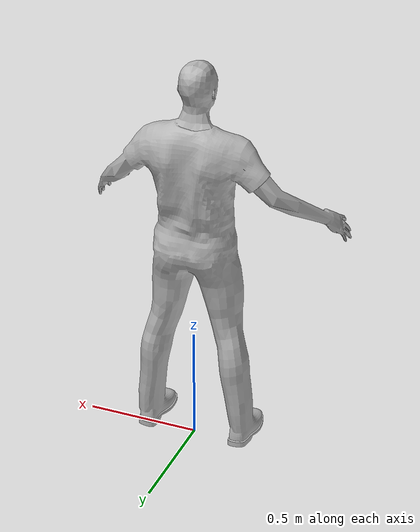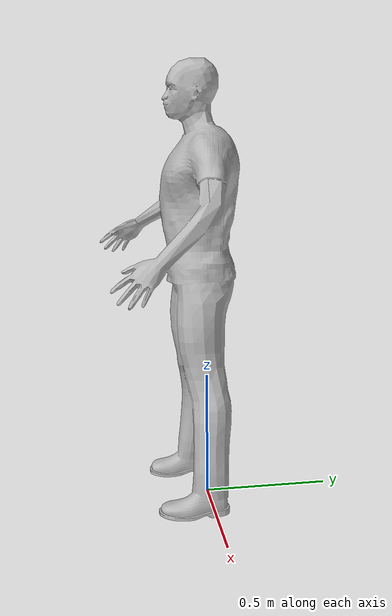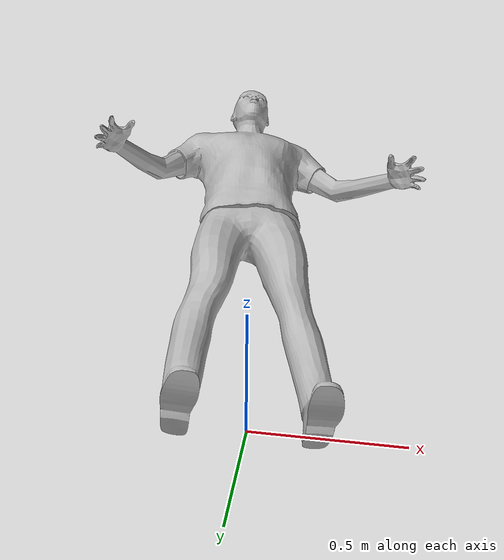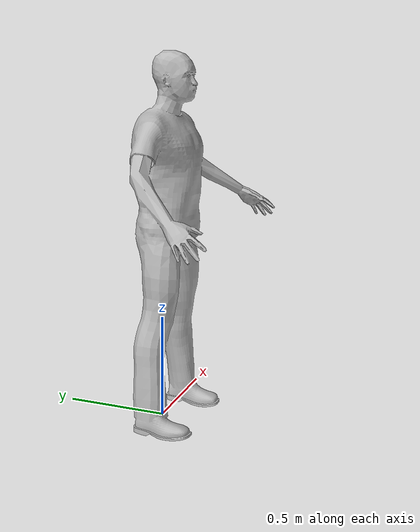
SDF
<?xml version='1.7'?>
<sdf version="1.7">
  <model name="Male">
    <static>false</static>
    <link name="link">
      <inertial>
        <pose>0 0 0.5 0 0 0</pose>
        <mass>80.0</mass>
        <inertia>
          <ixx>24.88</ixx>
          <ixy>0.0</ixy>
          <ixz>0.0</ixz>
          <iyy>25.73</iyy>
          <iyz>0.0</iyz>
          <izz>2.48</izz>
        </inertia>
      </inertial>

      <collision name="bottom">
        <pose>0 0 0.01 0 0 1.57</pose>
        <geometry>
          <box>
            <size>0.5 0.35 0.02</size>
          </box>
        </geometry>
      </collision>

     <collision name="person">
        <pose>0 0 0.02 0 0 1.57</pose>
        <geometry>
            <mesh>
                <uri>model://Male/meshes/male.dae</uri>
            </mesh>
        </geometry>
      </collision>

      <visual name="visual">
        <pose>0 0 0 0 0 0</pose>
        <geometry>
            <mesh>
                <uri>model://Male/meshes/male.dae</uri>
            </mesh>
        </geometry>
      </visual>
    </link>
  </model>
</sdf>
